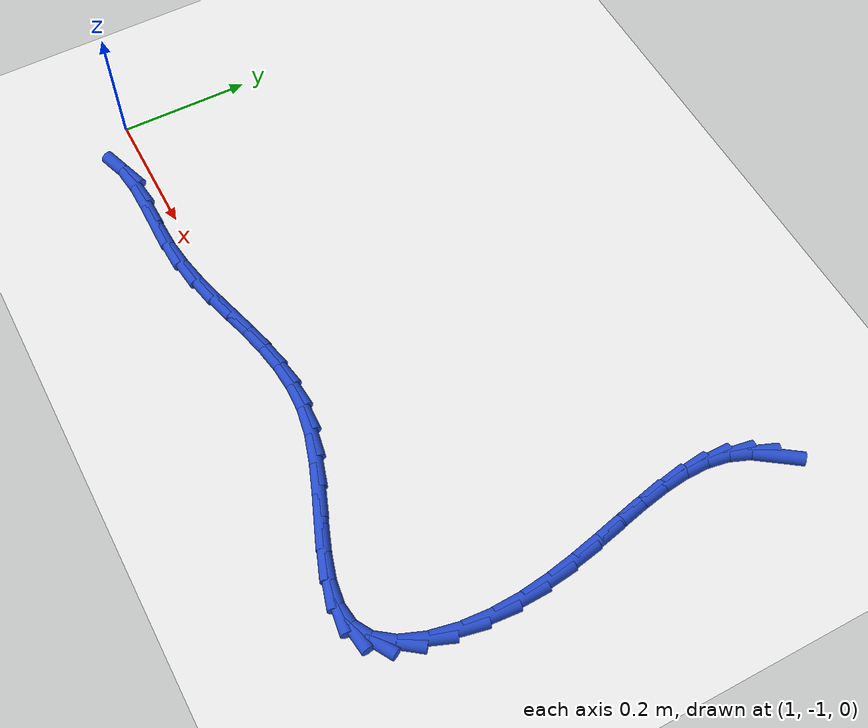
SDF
<sdf version="1.6">
 <world name="default">
  <model name="ground_plane">
   <static>1</static>
   <link name="link">
    <collision name="collision">
     <geometry><plane><normal>0 0 1</normal><size>100 100</size></plane></geometry>
     <surface><friction><ode><mu>100</mu><mu2>50</mu2></ode></friction></surface>
    </collision>
    <visual name="visual">
     <cast_shadows>0</cast_shadows>
     <geometry><plane><normal>0 0 1</normal><size>100 100</size></plane></geometry>
     <material>
      <script><uri>file://media/materials/scripts/gazebo.material</uri><name>Gazebo/WhiteGlow</name></script>
     </material>
    </visual>
   </link>
  </model>
  <model name="line">
   <link name="link_141">
    <pose>1.9617735573964359 -0.43586041314837887 0.01 0 1.57 0.9501683587384864</pose>
    <collision name="collision">
     <geometry><cylinder><radius>0.01</radius><length>0.08</length></cylinder></geometry>
    </collision>
    <visual name="visual">
     <material>
      <script><name>Gazebo/Blue</name><uri>file://media/materials/scripts/gazebo.material</uri></script>
     </material>
     <geometry><cylinder><radius>0.01</radius><length>0.08</length></cylinder></geometry>
    </visual>
   </link>
   <link name="link_142">
    <pose>1.9420837033369052 -0.463404161832713 0.01 0 1.57 1.1852569508010131</pose>
    <collision name="collision">
     <geometry><cylinder><radius>0.01</radius><length>0.08</length></cylinder></geometry>
    </collision>
    <visual name="visual">
     <material>
      <script><name>Gazebo/Blue</name><uri>file://media/materials/scripts/gazebo.material</uri></script>
     </material>
     <geometry><cylinder><radius>0.01</radius><length>0.08</length></cylinder></geometry>
    </visual>
   </link>
   <link name="link_143">
    <pose>1.9299106487840785 -0.49339812853862464 0.01 0 1.57 1.398816448470627</pose>
    <collision name="collision">
     <geometry><cylinder><radius>0.01</radius><length>0.08</length></cylinder></geometry>
    </collision>
    <visual name="visual">
     <material>
      <script><name>Gazebo/Blue</name><uri>file://media/materials/scripts/gazebo.material</uri></script>
     </material>
     <geometry><cylinder><radius>0.01</radius><length>0.08</length></cylinder></geometry>
    </visual>
   </link>
   <link name="link_144">
    <pose>1.924299140700667 -0.5257046677458147 0.01 0 1.57 1.564724237638546</pose>
    <collision name="collision">
     <geometry><cylinder><radius>0.01</radius><length>0.08</length></cylinder></geometry>
    </collision>
    <visual name="visual">
     <material>
      <script><name>Gazebo/Blue</name><uri>file://media/materials/scripts/gazebo.material</uri></script>
     </material>
     <geometry><cylinder><radius>0.01</radius><length>0.08</length></cylinder></geometry>
    </visual>
   </link>
   <link name="link_145">
    <pose>1.9240900545613737 -0.560138215115775 0.01 0 1.57 -1.4603415432460003</pose>
    <collision name="collision">
     <geometry><cylinder><radius>0.01</radius><length>0.08</length></cylinder></geometry>
    </collision>
    <visual name="visual">
     <material>
      <script><name>Gazebo/Blue</name><uri>file://media/materials/scripts/gazebo.material</uri></script>
     </material>
     <geometry><cylinder><radius>0.01</radius><length>0.08</length></cylinder></geometry>
    </visual>
   </link>
   <link name="link_146">
    <pose>1.928124265840898 -0.5965132063099999 0.01 0 1.57 -1.3862377756293438</pose>
    <collision name="collision">
     <geometry><cylinder><radius>0.01</radius><length>0.08</length></cylinder></geometry>
    </collision>
    <visual name="visual">
     <material>
      <script><name>Gazebo/Blue</name><uri>file://media/materials/scripts/gazebo.material</uri></script>
     </material>
     <geometry><cylinder><radius>0.01</radius><length>0.08</length></cylinder></geometry>
    </visual>
   </link>
   <link name="link_147">
    <pose>1.9352426500139404 -0.6346440769899826 0.01 0 1.57 -1.3468303226838956</pose>
    <collision name="collision">
     <geometry><cylinder><radius>0.01</radius><length>0.08</length></cylinder></geometry>
    </collision>
    <visual name="visual">
     <material>
      <script><name>Gazebo/Blue</name><uri>file://media/materials/scripts/gazebo.material</uri></script>
     </material>
     <geometry><cylinder><radius>0.01</radius><length>0.08</length></cylinder></geometry>
    </visual>
   </link>
   <link name="link_148">
    <pose>1.9442860825552029 -0.6743452628172184 0.01 0 1.57 -1.336431552557767</pose>
    <collision name="collision">
     <geometry><cylinder><radius>0.01</radius><length>0.08</length></cylinder></geometry>
    </collision>
    <visual name="visual">
     <material>
      <script><name>Gazebo/Blue</name><uri>file://media/materials/scripts/gazebo.material</uri></script>
     </material>
     <geometry><cylinder><radius>0.01</radius><length>0.08</length></cylinder></geometry>
    </visual>
   </link>
   <link name="link_149">
    <pose>1.9540954389393848 -0.7154311994531979 0.01 0 1.57 -1.3516888336356652</pose>
    <collision name="collision">
     <geometry><cylinder><radius>0.01</radius><length>0.08</length></cylinder></geometry>
    </collision>
    <visual name="visual">
     <material>
      <script><name>Gazebo/Blue</name><uri>file://media/materials/scripts/gazebo.material</uri></script>
     </material>
     <geometry><cylinder><radius>0.01</radius><length>0.08</length></cylinder></geometry>
    </visual>
   </link>
   <link name="link_150">
    <pose>1.9635115946411874 -0.7577163225594159 0.01 0 1.57 -1.3911366325989047</pose>
    <collision name="collision">
     <geometry><cylinder><radius>0.01</radius><length>0.08</length></cylinder></geometry>
    </collision>
    <visual name="visual">
     <material>
      <script><name>Gazebo/Blue</name><uri>file://media/materials/scripts/gazebo.material</uri></script>
     </material>
     <geometry><cylinder><radius>0.01</radius><length>0.08</length></cylinder></geometry>
    </visual>
   </link>
   <link name="link_151">
    <pose>1.971375425135311 -0.8010150677973662 0.01 0 1.57 -1.4545595973170296</pose>
    <collision name="collision">
     <geometry><cylinder><radius>0.01</radius><length>0.08</length></cylinder></geometry>
    </collision>
    <visual name="visual">
     <material>
      <script><name>Gazebo/Blue</name><uri>file://media/materials/scripts/gazebo.material</uri></script>
     </material>
     <geometry><cylinder><radius>0.01</radius><length>0.08</length></cylinder></geometry>
    </visual>
   </link>
   <link name="link_152">
    <pose>1.9765278058964582 -0.8451418708285421 0.01 0 1.57 -1.5421727718230362</pose>
    <collision name="collision">
     <geometry><cylinder><radius>0.01</radius><length>0.08</length></cylinder></geometry>
    </collision>
    <visual name="visual">
     <material>
      <script><name>Gazebo/Blue</name><uri>file://media/materials/scripts/gazebo.material</uri></script>
     </material>
     <geometry><cylinder><radius>0.01</radius><length>0.08</length></cylinder></geometry>
    </visual>
   </link>
   <link name="link_153">
    <pose>1.977809612399327 -0.889911167314438 0.01 0 1.57 1.4902729125138956</pose>
    <collision name="collision">
     <geometry><cylinder><radius>0.01</radius><length>0.08</length></cylinder></geometry>
    </collision>
    <visual name="visual">
     <material>
      <script><name>Gazebo/Blue</name><uri>file://media/materials/scripts/gazebo.material</uri></script>
     </material>
     <geometry><cylinder><radius>0.01</radius><length>0.08</length></cylinder></geometry>
    </visual>
   </link>
   <link name="link_154">
    <pose>1.9741960206782114 -0.9346904178528938 0.01 0 1.57 1.3621511971306812</pose>
    <collision name="collision">
     <geometry><cylinder><radius>0.01</radius><length>0.08</length></cylinder></geometry>
    </collision>
    <visual name="visual">
     <material>
      <script><name>Gazebo/Blue</name><uri>file://media/materials/scripts/gazebo.material</uri></script>
     </material>
     <geometry><cylinder><radius>0.01</radius><length>0.08</length></cylinder></geometry>
    </visual>
   </link>
   <link name="link_155">
    <pose>1.9652875258569877 -0.9767659149459622 0.01 0 1.57 1.19029158363128</pose>
    <collision name="collision">
     <geometry><cylinder><radius>0.01</radius><length>0.08</length></cylinder></geometry>
    </collision>
    <visual name="visual">
     <material>
      <script><name>Gazebo/Blue</name><uri>file://media/materials/scripts/gazebo.material</uri></script>
     </material>
     <geometry><cylinder><radius>0.01</radius><length>0.08</length></cylinder></geometry>
    </visual>
   </link>
   <link name="link_156">
    <pose>1.9508664798789406 -1.0128187007253406 0.01 0 1.57 0.9244753909966543</pose>
    <collision name="collision">
     <geometry><cylinder><radius>0.01</radius><length>0.08</length></cylinder></geometry>
    </collision>
    <visual name="visual">
     <material>
      <script><name>Gazebo/Blue</name><uri>file://media/materials/scripts/gazebo.material</uri></script>
     </material>
     <geometry><cylinder><radius>0.01</radius><length>0.08</length></cylinder></geometry>
    </visual>
   </link>
   <link name="link_157">
    <pose>1.9307152549615987 -1.0395297498466116 0.01 0 1.57 0.513240767930995</pose>
    <collision name="collision">
     <geometry><cylinder><radius>0.01</radius><length>0.08</length></cylinder></geometry>
    </collision>
    <visual name="visual">
     <material>
      <script><name>Gazebo/Blue</name><uri>file://media/materials/scripts/gazebo.material</uri></script>
     </material>
     <geometry><cylinder><radius>0.01</radius><length>0.08</length></cylinder></geometry>
    </visual>
   </link>
   <link name="link_158">
    <pose>1.9047373392485842 -1.0541714539741156 0.01 0 1.57 0.11294343023657678</pose>
    <collision name="collision">
     <geometry><cylinder><radius>0.01</radius><length>0.08</length></cylinder></geometry>
    </collision>
    <visual name="visual">
     <material>
      <script><name>Gazebo/Blue</name><uri>file://media/materials/scripts/gazebo.material</uri></script>
     </material>
     <geometry><cylinder><radius>0.01</radius><length>0.08</length></cylinder></geometry>
    </visual>
   </link>
   <link name="link_159">
    <pose>1.8735914847861672 -1.0577042079318673 0.01 0 1.57 -0.14590392970670696</pose>
    <collision name="collision">
     <geometry><cylinder><radius>0.01</radius><length>0.08</length></cylinder></geometry>
    </collision>
    <visual name="visual">
     <material>
      <script><name>Gazebo/Blue</name><uri>file://media/materials/scripts/gazebo.material</uri></script>
     </material>
     <geometry><cylinder><radius>0.01</radius><length>0.08</length></cylinder></geometry>
    </visual>
   </link>
   <link name="link_160">
    <pose>1.8382270527350617 -1.0525074699051151 0.01 0 1.57 -0.29036144441368594</pose>
    <collision name="collision">
     <geometry><cylinder><radius>0.01</radius><length>0.08</length></cylinder></geometry>
    </collision>
    <visual name="visual">
     <material>
      <script><name>Gazebo/Blue</name><uri>file://media/materials/scripts/gazebo.material</uri></script>
     </material>
     <geometry><cylinder><radius>0.01</radius><length>0.08</length></cylinder></geometry>
    </visual>
   </link>
   <link name="link_161">
    <pose>1.7995940124417338 -1.0409636678900058 0.01 0 1.57 -0.36201134570139337</pose>
    <collision name="collision">
     <geometry><cylinder><radius>0.01</radius><length>0.08</length></cylinder></geometry>
    </collision>
    <visual name="visual">
     <material>
      <script><name>Gazebo/Blue</name><uri>file://media/materials/scripts/gazebo.material</uri></script>
     </material>
     <geometry><cylinder><radius>0.01</radius><length>0.08</length></cylinder></geometry>
    </visual>
   </link>
   <link name="link_162">
    <pose>1.758642333252649 -1.025455229882688 0.01 0 1.57 -0.38381225856924245</pose>
    <collision name="collision">
     <geometry><cylinder><radius>0.01</radius><length>0.08</length></cylinder></geometry>
    </collision>
    <visual name="visual">
     <material>
      <script><name>Gazebo/Blue</name><uri>file://media/materials/scripts/gazebo.material</uri></script>
     </material>
     <geometry><cylinder><radius>0.01</radius><length>0.08</length></cylinder></geometry>
    </visual>
   </link>
   <link name="link_163">
    <pose>1.716321984514275 -1.0083645838793085 0.01 0 1.57 -0.364160457437728</pose>
    <collision name="collision">
     <geometry><cylinder><radius>0.01</radius><length>0.08</length></cylinder></geometry>
    </collision>
    <visual name="visual">
     <material>
      <script><name>Gazebo/Blue</name><uri>file://media/materials/scripts/gazebo.material</uri></script>
     </material>
     <geometry><cylinder><radius>0.01</radius><length>0.08</length></cylinder></geometry>
    </visual>
   </link>
   <link name="link_164">
    <pose>1.6735829355730765 -0.9920741578760153 0.01 0 1.57 -0.30111065526833897</pose>
    <collision name="collision">
     <geometry><cylinder><radius>0.01</radius><length>0.08</length></cylinder></geometry>
    </collision>
    <visual name="visual">
     <material>
      <script><name>Gazebo/Blue</name><uri>file://media/materials/scripts/gazebo.material</uri></script>
     </material>
     <geometry><cylinder><radius>0.01</radius><length>0.08</length></cylinder></geometry>
    </visual>
   </link>
   <link name="link_165">
    <pose>1.6313751557755196 -0.9789663798689549 0.01 0 1.57 -0.18652129417374694</pose>
    <collision name="collision">
     <geometry><cylinder><radius>0.01</radius><length>0.08</length></cylinder></geometry>
    </collision>
    <visual name="visual">
     <material>
      <script><name>Gazebo/Blue</name><uri>file://media/materials/scripts/gazebo.material</uri></script>
     </material>
     <geometry><cylinder><radius>0.01</radius><length>0.08</length></cylinder></geometry>
    </visual>
   </link>
   <link name="link_166">
    <pose>1.5905890705734964 -0.9712694394126681 0.01 0 1.57 -0.05109535693297254</pose>
    <collision name="collision">
     <geometry><cylinder><radius>0.01</radius><length>0.08</length></cylinder></geometry>
    </collision>
    <visual name="visual">
     <material>
      <script><name>Gazebo/Blue</name><uri>file://media/materials/scripts/gazebo.material</uri></script>
     </material>
     <geometry><cylinder><radius>0.01</radius><length>0.08</length></cylinder></geometry>
    </visual>
   </link>
   <link name="link_167">
    <pose>1.5513630393048081 -0.9692634253159413 0.01 0 1.57 0.06903260841106447</pose>
    <collision name="collision">
     <geometry><cylinder><radius>0.01</radius><length>0.08</length></cylinder></geometry>
    </collision>
    <visual name="visual">
     <material>
      <script><name>Gazebo/Blue</name><uri>file://media/materials/scripts/gazebo.material</uri></script>
     </material>
     <geometry><cylinder><radius>0.01</radius><length>0.08</length></cylinder></geometry>
    </visual>
   </link>
   <link name="link_168">
    <pose>1.513320188402695 -0.9718938022277961 0.01 0 1.57 0.1645857701315347</pose>
    <collision name="collision">
     <geometry><cylinder><radius>0.01</radius><length>0.08</length></cylinder></geometry>
    </collision>
    <visual name="visual">
     <material>
      <script><name>Gazebo/Blue</name><uri>file://media/materials/scripts/gazebo.material</uri></script>
     </material>
     <geometry><cylinder><radius>0.01</radius><length>0.08</length></cylinder></geometry>
    </visual>
   </link>
   <link name="link_169">
    <pose>1.4760736012620344 -0.9780800199959525 0.01 0 1.57 0.23093433617052553</pose>
    <collision name="collision">
     <geometry><cylinder><radius>0.01</radius><length>0.08</length></cylinder></geometry>
    </collision>
    <visual name="visual">
     <material>
      <script><name>Gazebo/Blue</name><uri>file://media/materials/scripts/gazebo.material</uri></script>
     </material>
     <geometry><cylinder><radius>0.01</radius><length>0.08</length></cylinder></geometry>
    </visual>
   </link>
   <link name="link_170">
    <pose>1.439236361277703 -0.9867415284681292 0.01 0 1.57 0.26665264275072287</pose>
    <collision name="collision">
     <geometry><cylinder><radius>0.01</radius><length>0.08</length></cylinder></geometry>
    </collision>
    <visual name="visual">
     <material>
      <script><name>Gazebo/Blue</name><uri>file://media/materials/scripts/gazebo.material</uri></script>
     </material>
     <geometry><cylinder><radius>0.01</radius><length>0.08</length></cylinder></geometry>
    </visual>
   </link>
   <link name="link_171">
    <pose>1.4024215518445806 -0.9967977774920461 0.01 0 1.57 0.27201667949635944</pose>
    <collision name="collision">
     <geometry><cylinder><radius>0.01</radius><length>0.08</length></cylinder></geometry>
    </collision>
    <visual name="visual">
     <material>
      <script><name>Gazebo/Blue</name><uri>file://media/materials/scripts/gazebo.material</uri></script>
     </material>
     <geometry><cylinder><radius>0.01</radius><length>0.08</length></cylinder></geometry>
    </visual>
   </link>
   <link name="link_172">
    <pose>1.3652422563575444 -1.0071682169154226 0.01 0 1.57 0.2479888192317881</pose>
    <collision name="collision">
     <geometry><cylinder><radius>0.01</radius><length>0.08</length></cylinder></geometry>
    </collision>
    <visual name="visual">
     <material>
      <script><name>Gazebo/Blue</name><uri>file://media/materials/scripts/gazebo.material</uri></script>
     </material>
     <geometry><cylinder><radius>0.01</radius><length>0.08</length></cylinder></geometry>
    </visual>
   </link>
   <link name="link_173">
    <pose>1.327311558211472 -1.016772296585978 0.01 0 1.57 0.19600134393164342</pose>
    <collision name="collision">
     <geometry><cylinder><radius>0.01</radius><length>0.08</length></cylinder></geometry>
    </collision>
    <visual name="visual">
     <material>
      <script><name>Gazebo/Blue</name><uri>file://media/materials/scripts/gazebo.material</uri></script>
     </material>
     <geometry><cylinder><radius>0.01</radius><length>0.08</length></cylinder></geometry>
    </visual>
   </link>
   <link name="link_174">
    <pose>1.2882425408012408 -1.024529466351432 0.01 0 1.57 0.11841855892378769</pose>
    <collision name="collision">
     <geometry><cylinder><radius>0.01</radius><length>0.08</length></cylinder></geometry>
    </collision>
    <visual name="visual">
     <material>
      <script><name>Gazebo/Blue</name><uri>file://media/materials/scripts/gazebo.material</uri></script>
     </material>
     <geometry><cylinder><radius>0.01</radius><length>0.08</length></cylinder></geometry>
    </visual>
   </link>
   <link name="link_175">
    <pose>1.2476482875217283 -1.0293591760595042 0.01 0 1.57 0.029881996568665883</pose>
    <collision name="collision">
     <geometry><cylinder><radius>0.01</radius><length>0.08</length></cylinder></geometry>
    </collision>
    <visual name="visual">
     <material>
      <script><name>Gazebo/Blue</name><uri>file://media/materials/scripts/gazebo.material</uri></script>
     </material>
     <geometry><cylinder><radius>0.01</radius><length>0.08</length></cylinder></geometry>
    </visual>
   </link>
   <link name="link_176">
    <pose>1.2053778717514616 -1.030622676574968 0.01 0 1.57 -0.009580179115248333</pose>
    <collision name="collision">
     <geometry><cylinder><radius>0.01</radius><length>0.08</length></cylinder></geometry>
    </collision>
    <visual name="visual">
     <material>
      <script><name>Gazebo/Blue</name><uri>file://media/materials/scripts/gazebo.material</uri></script>
     </material>
     <geometry><cylinder><radius>0.01</radius><length>0.08</length></cylinder></geometry>
    </visual>
   </link>
   <link name="link_177">
    <pose>1.162632813897886 -1.0302131587358696 0.01 0 1.57 0.01711602011801848</pose>
    <collision name="collision">
     <geometry><cylinder><radius>0.01</radius><length>0.08</length></cylinder></geometry>
    </collision>
    <visual name="visual">
     <material>
      <script><name>Gazebo/Blue</name><uri>file://media/materials/scripts/gazebo.material</uri></script>
     </material>
     <geometry><cylinder><radius>0.01</radius><length>0.08</length></cylinder></geometry>
    </visual>
   </link>
   <link name="link_178">
    <pose>1.1210955694712246 -1.0309241804816833 0.01 0 1.57 0.11913907179888035</pose>
    <collision name="collision">
     <geometry><cylinder><radius>0.01</radius><length>0.08</length></cylinder></geometry>
    </collision>
    <visual name="visual">
     <material>
      <script><name>Gazebo/Blue</name><uri>file://media/materials/scripts/gazebo.material</uri></script>
     </material>
     <geometry><cylinder><radius>0.01</radius><length>0.08</length></cylinder></geometry>
    </visual>
   </link>
   <link name="link_179">
    <pose>1.0824491737950261 -1.0355503852306593 0.01 0 1.57 0.32118326191624047</pose>
    <collision name="collision">
     <geometry><cylinder><radius>0.01</radius><length>0.08</length></cylinder></geometry>
    </collision>
    <visual name="visual">
     <material>
      <script><name>Gazebo/Blue</name><uri>file://media/materials/scripts/gazebo.material</uri></script>
     </material>
     <geometry><cylinder><radius>0.01</radius><length>0.08</length></cylinder></geometry>
    </visual>
   </link>
  </model>
 </world>
</sdf>
